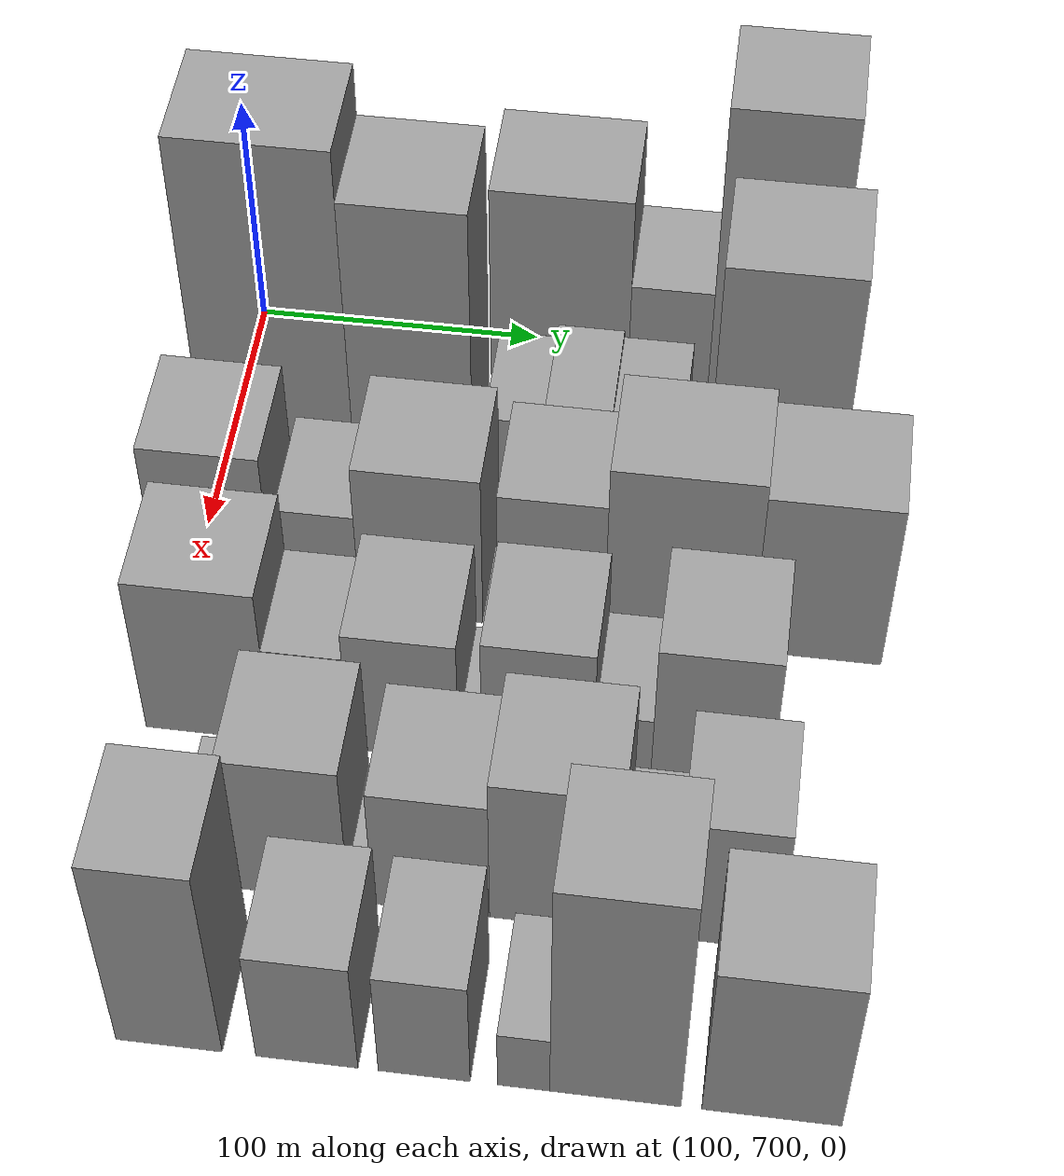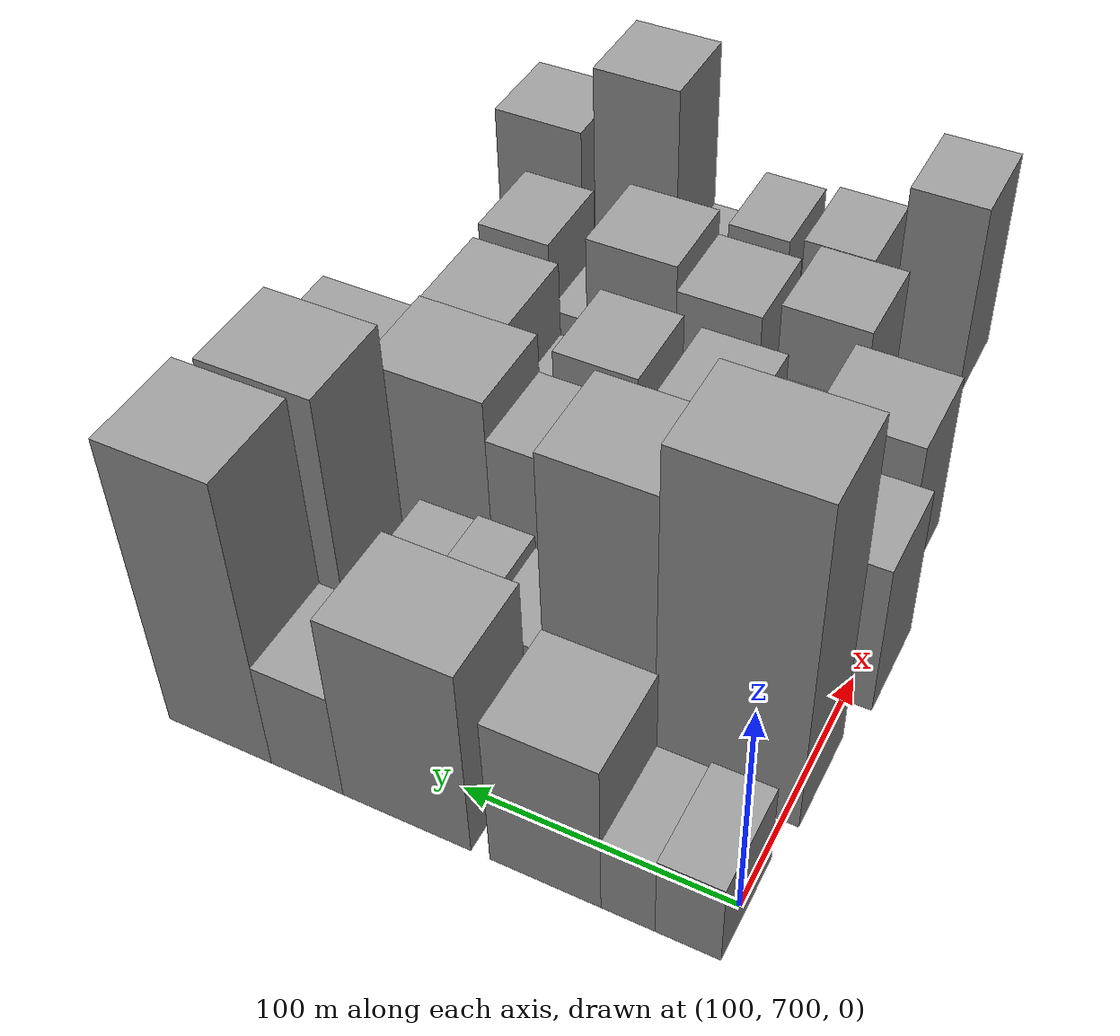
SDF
<sdf version="1.6">
 <world name="default">
  <model name="building_46">
   <static>1</static>
   <pose>100.0000 708.9300 0 0.000000 0.000000 0.000000</pose>
   <link name="link">
    <pose>0 0 19.50 0 0 0</pose>
    <collision name="collision"><geometry><box><size>40.0000 22.5746 39.0000</size></box></geometry></collision>
    <visual name="visual">
     <cast_shadows>0</cast_shadows>
     <geometry><box><size>40.0000 22.5746 39.0000</size></box></geometry>
     <material>
      <script>
       <uri>model://grey_wall/materials/scripts</uri>
       <uri>model://grey_wall/materials/textures</uri>
       <name>vrc/grey_wall</name>
      </script>
     </material>
    </visual>
   </link>
  </model>
  <model name="building_47">
   <static>1</static>
   <pose>100.0000 729.6130 0 0.000000 0.000000 0.000000</pose>
   <link name="link">
    <pose>0 0 18.00 0 0 0</pose>
    <collision name="collision"><geometry><box><size>40.0000 18.7915 36.0000</size></box></geometry></collision>
    <visual name="visual">
     <cast_shadows>0</cast_shadows>
     <geometry><box><size>40.0000 18.7915 36.0000</size></box></geometry>
     <material>
      <script>
       <uri>model://grey_wall/materials/scripts</uri>
       <uri>model://grey_wall/materials/textures</uri>
       <name>vrc/grey_wall</name>
      </script>
     </material>
    </visual>
   </link>
  </model>
  <model name="building_48">
   <static>1</static>
   <pose>100.0000 759.0133 0 0.000000 0.000000 0.000000</pose>
   <link name="link">
    <pose>0 0 36.00 0 0 0</pose>
    <collision name="collision"><geometry><box><size>40.0000 40.0090 72.0000</size></box></geometry></collision>
    <visual name="visual">
     <cast_shadows>0</cast_shadows>
     <geometry><box><size>40.0000 40.0090 72.0000</size></box></geometry>
     <material>
      <script>
       <uri>model://grey_wall/materials/scripts</uri>
       <uri>model://grey_wall/materials/textures</uri>
       <name>vrc/grey_wall</name>
      </script>
     </material>
    </visual>
   </link>
  </model>
  <model name="building_49">
   <static>1</static>
   <pose>100.0000 810.4328 0 0.000000 0.000000 0.000000</pose>
   <link name="link">
    <pose>0 0 45.00 0 0 0</pose>
    <collision name="collision"><geometry><box><size>40.0000 48.8301 90.0000</size></box></geometry></collision>
    <visual name="visual">
     <cast_shadows>0</cast_shadows>
     <geometry><box><size>40.0000 48.8301 90.0000</size></box></geometry>
     <material>
      <script>
       <uri>model://grey_wall/materials/scripts</uri>
       <uri>model://grey_wall/materials/textures</uri>
       <name>vrc/grey_wall</name>
      </script>
     </material>
    </visual>
   </link>
  </model>
  <model name="building_50">
   <static>1</static>
   <pose>100.0000 849.0841 0 0.000000 0.000000 0.000000</pose>
   <link name="link">
    <pose>0 0 25.50 0 0 0</pose>
    <collision name="collision"><geometry><box><size>40.0000 28.4724 51.0000</size></box></geometry></collision>
    <visual name="visual">
     <cast_shadows>0</cast_shadows>
     <geometry><box><size>40.0000 28.4724 51.0000</size></box></geometry>
     <material>
      <script>
       <uri>model://grey_wall/materials/scripts</uri>
       <uri>model://grey_wall/materials/textures</uri>
       <name>vrc/grey_wall</name>
      </script>
     </material>
    </visual>
   </link>
  </model>
  <model name="building_51">
   <static>1</static>
   <pose>100.0000 884.3247 0 0.000000 0.000000 0.000000</pose>
   <link name="link">
    <pose>0 0 67.50 0 0 0</pose>
    <collision name="collision"><geometry><box><size>40.0000 42.0088 135.0000</size></box></geometry></collision>
    <visual name="visual">
     <cast_shadows>0</cast_shadows>
     <geometry><box><size>40.0000 42.0088 135.0000</size></box></geometry>
     <material>
      <script>
       <uri>model://grey_wall/materials/scripts</uri>
       <uri>model://grey_wall/materials/textures</uri>
       <name>vrc/grey_wall</name>
      </script>
     </material>
    </visual>
   </link>
  </model>
  <model name="building_96">
   <static>1</static>
   <pose>155.0000 720.3767 0 0.000000 0.000000 0.000000</pose>
   <link name="link">
    <pose>0 0 76.50 0 0 0</pose>
    <collision name="collision"><geometry><box><size>40.0000 52.4313 153.0000</size></box></geometry></collision>
    <visual name="visual">
     <cast_shadows>0</cast_shadows>
     <geometry><box><size>40.0000 52.4313 153.0000</size></box></geometry>
     <material>
      <script>
       <uri>model://grey_wall/materials/scripts</uri>
       <uri>model://grey_wall/materials/textures</uri>
       <name>vrc/grey_wall</name>
      </script>
     </material>
    </visual>
   </link>
  </model>
  <model name="building_97">
   <static>1</static>
   <pose>155.0000 767.0884 0 0.000000 0.000000 0.000000</pose>
   <link name="link">
    <pose>0 0 66.00 0 0 0</pose>
    <collision name="collision"><geometry><box><size>40.0000 40.9922 132.0000</size></box></geometry></collision>
    <visual name="visual">
     <cast_shadows>0</cast_shadows>
     <geometry><box><size>40.0000 40.9922 132.0000</size></box></geometry>
     <material>
      <script>
       <uri>model://grey_wall/materials/scripts</uri>
       <uri>model://grey_wall/materials/textures</uri>
       <name>vrc/grey_wall</name>
      </script>
     </material>
    </visual>
   </link>
  </model>
  <model name="building_98">
   <static>1</static>
   <pose>155.0000 801.6660 0 0.000000 0.000000 0.000000</pose>
   <link name="link">
    <pose>0 0 19.50 0 0 0</pose>
    <collision name="collision"><geometry><box><size>40.0000 20.1630 39.0000</size></box></geometry></collision>
    <visual name="visual">
     <cast_shadows>0</cast_shadows>
     <geometry><box><size>40.0000 20.1630 39.0000</size></box></geometry>
     <material>
      <script>
       <uri>model://grey_wall/materials/scripts</uri>
       <uri>model://grey_wall/materials/textures</uri>
       <name>vrc/grey_wall</name>
      </script>
     </material>
    </visual>
   </link>
  </model>
  <model name="building_99">
   <static>1</static>
   <pose>155.0000 823.0206 0 0.000000 0.000000 0.000000</pose>
   <link name="link">
    <pose>0 0 22.50 0 0 0</pose>
    <collision name="collision"><geometry><box><size>40.0000 22.5461 45.0000</size></box></geometry></collision>
    <visual name="visual">
     <cast_shadows>0</cast_shadows>
     <geometry><box><size>40.0000 22.5461 45.0000</size></box></geometry>
     <material>
      <script>
       <uri>model://grey_wall/materials/scripts</uri>
       <uri>model://grey_wall/materials/textures</uri>
       <name>vrc/grey_wall</name>
      </script>
     </material>
    </visual>
   </link>
  </model>
  <model name="building_100">
   <static>1</static>
   <pose>155.0000 846.1812 0 0.000000 0.000000 0.000000</pose>
   <link name="link">
    <pose>0 0 21.00 0 0 0</pose>
    <collision name="collision"><geometry><box><size>40.0000 23.7752 42.0000</size></box></geometry></collision>
    <visual name="visual">
     <cast_shadows>0</cast_shadows>
     <geometry><box><size>40.0000 23.7752 42.0000</size></box></geometry>
     <material>
      <script>
       <uri>model://grey_wall/materials/scripts</uri>
       <uri>model://grey_wall/materials/textures</uri>
       <name>vrc/grey_wall</name>
      </script>
     </material>
    </visual>
   </link>
  </model>
  <model name="building_101">
   <static>1</static>
   <pose>155.0000 889.3087 0 0.000000 0.000000 0.000000</pose>
   <link name="link">
    <pose>0 0 60.00 0 0 0</pose>
    <collision name="collision"><geometry><box><size>40.0000 44.4796 120.0000</size></box></geometry></collision>
    <visual name="visual">
     <cast_shadows>0</cast_shadows>
     <geometry><box><size>40.0000 44.4796 120.0000</size></box></geometry>
     <material>
      <script>
       <uri>model://grey_wall/materials/scripts</uri>
       <uri>model://grey_wall/materials/textures</uri>
       <name>vrc/grey_wall</name>
      </script>
     </material>
    </visual>
   </link>
  </model>
  <model name="building_146">
   <static>1</static>
   <pose>210.0000 708.9794 0 0.000000 0.000000 0.000000</pose>
   <link name="link">
    <pose>0 0 36.00 0 0 0</pose>
    <collision name="collision"><geometry><box><size>40.0000 39.3848 72.0000</size></box></geometry></collision>
    <visual name="visual">
     <cast_shadows>0</cast_shadows>
     <geometry><box><size>40.0000 39.3848 72.0000</size></box></geometry>
     <material>
      <script>
       <uri>model://grey_wall/materials/scripts</uri>
       <uri>model://grey_wall/materials/textures</uri>
       <name>vrc/grey_wall</name>
      </script>
     </material>
    </visual>
   </link>
  </model>
  <model name="building_147">
   <static>1</static>
   <pose>210.0000 744.5570 0 0.000000 0.000000 0.000000</pose>
   <link name="link">
    <pose>0 0 24.00 0 0 0</pose>
    <collision name="collision"><geometry><box><size>40.0000 25.7705 48.0000</size></box></geometry></collision>
    <visual name="visual">
     <cast_shadows>0</cast_shadows>
     <geometry><box><size>40.0000 25.7705 48.0000</size></box></geometry>
     <material>
      <script>
       <uri>model://grey_wall/materials/scripts</uri>
       <uri>model://grey_wall/materials/textures</uri>
       <name>vrc/grey_wall</name>
      </script>
     </material>
    </visual>
   </link>
  </model>
  <model name="building_148">
   <static>1</static>
   <pose>210.0000 777.9944 0 0.000000 0.000000 0.000000</pose>
   <link name="link">
    <pose>0 0 36.00 0 0 0</pose>
    <collision name="collision"><geometry><box><size>40.0000 41.1043 72.0000</size></box></geometry></collision>
    <visual name="visual">
     <cast_shadows>0</cast_shadows>
     <geometry><box><size>40.0000 41.1043 72.0000</size></box></geometry>
     <material>
      <script>
       <uri>model://grey_wall/materials/scripts</uri>
       <uri>model://grey_wall/materials/textures</uri>
       <name>vrc/grey_wall</name>
      </script>
     </material>
    </visual>
   </link>
  </model>
  <model name="building_149">
   <static>1</static>
   <pose>210.0000 821.1472 0 0.000000 0.000000 0.000000</pose>
   <link name="link">
    <pose>0 0 33.00 0 0 0</pose>
    <collision name="collision"><geometry><box><size>40.0000 35.2014 66.0000</size></box></geometry></collision>
    <visual name="visual">
     <cast_shadows>0</cast_shadows>
     <geometry><box><size>40.0000 35.2014 66.0000</size></box></geometry>
     <material>
      <script>
       <uri>model://grey_wall/materials/scripts</uri>
       <uri>model://grey_wall/materials/textures</uri>
       <name>vrc/grey_wall</name>
      </script>
     </material>
    </visual>
   </link>
  </model>
  <model name="building_150">
   <static>1</static>
   <pose>210.0000 863.0113 0 0.000000 0.000000 0.000000</pose>
   <link name="link">
    <pose>0 0 42.00 0 0 0</pose>
    <collision name="collision"><geometry><box><size>40.0000 48.5268 84.0000</size></box></geometry></collision>
    <visual name="visual">
     <cast_shadows>0</cast_shadows>
     <geometry><box><size>40.0000 48.5268 84.0000</size></box></geometry>
     <material>
      <script>
       <uri>model://grey_wall/materials/scripts</uri>
       <uri>model://grey_wall/materials/textures</uri>
       <name>vrc/grey_wall</name>
      </script>
     </material>
    </visual>
   </link>
  </model>
  <model name="building_151">
   <static>1</static>
   <pose>210.0000 908.4599 0 0.000000 0.000000 0.000000</pose>
   <link name="link">
    <pose>0 0 39.00 0 0 0</pose>
    <collision name="collision"><geometry><box><size>40.0000 42.3704 78.0000</size></box></geometry></collision>
    <visual name="visual">
     <cast_shadows>0</cast_shadows>
     <geometry><box><size>40.0000 42.3704 78.0000</size></box></geometry>
     <material>
      <script>
       <uri>model://grey_wall/materials/scripts</uri>
       <uri>model://grey_wall/materials/textures</uri>
       <name>vrc/grey_wall</name>
      </script>
     </material>
    </visual>
   </link>
  </model>
  <model name="building_195">
   <static>1</static>
   <pose>265.0000 717.8238 0 0.000000 0.000000 0.000000</pose>
   <link name="link">
    <pose>0 0 37.50 0 0 0</pose>
    <collision name="collision"><geometry><box><size>40.0000 40.7514 75.0000</size></box></geometry></collision>
    <visual name="visual">
     <cast_shadows>0</cast_shadows>
     <geometry><box><size>40.0000 40.7514 75.0000</size></box></geometry>
     <material>
      <script>
       <uri>model://grey_wall/materials/scripts</uri>
       <uri>model://grey_wall/materials/textures</uri>
       <name>vrc/grey_wall</name>
      </script>
     </material>
    </visual>
   </link>
  </model>
  <model name="building_196">
   <static>1</static>
   <pose>265.0000 750.7844 0 0.000000 0.000000 0.000000</pose>
   <link name="link">
    <pose>0 0 24.00 0 0 0</pose>
    <collision name="collision"><geometry><box><size>40.0000 25.1699 48.0000</size></box></geometry></collision>
    <visual name="visual">
     <cast_shadows>0</cast_shadows>
     <geometry><box><size>40.0000 25.1699 48.0000</size></box></geometry>
     <material>
      <script>
       <uri>model://grey_wall/materials/scripts</uri>
       <uri>model://grey_wall/materials/textures</uri>
       <name>vrc/grey_wall</name>
      </script>
     </material>
    </visual>
   </link>
  </model>
  <model name="building_197">
   <static>1</static>
   <pose>265.0000 781.0442 0 0.000000 0.000000 0.000000</pose>
   <link name="link">
    <pose>0 0 30.00 0 0 0</pose>
    <collision name="collision"><geometry><box><size>40.0000 35.3497 60.0000</size></box></geometry></collision>
    <visual name="visual">
     <cast_shadows>0</cast_shadows>
     <geometry><box><size>40.0000 35.3497 60.0000</size></box></geometry>
     <material>
      <script>
       <uri>model://grey_wall/materials/scripts</uri>
       <uri>model://grey_wall/materials/textures</uri>
       <name>vrc/grey_wall</name>
      </script>
     </material>
    </visual>
   </link>
  </model>
  <model name="building_198">
   <static>1</static>
   <pose>265.0000 802.3979 0 0.000000 0.000000 0.000000</pose>
   <link name="link">
    <pose>0 0 9.00 0 0 0</pose>
    <collision name="collision"><geometry><box><size>40.0000 7.3576 18.0000</size></box></geometry></collision>
    <visual name="visual">
     <cast_shadows>0</cast_shadows>
     <geometry><box><size>40.0000 7.3576 18.0000</size></box></geometry>
     <material>
      <script>
       <uri>model://grey_wall/materials/scripts</uri>
       <uri>model://grey_wall/materials/textures</uri>
       <name>vrc/grey_wall</name>
      </script>
     </material>
    </visual>
   </link>
  </model>
  <model name="building_199">
   <static>1</static>
   <pose>265.0000 823.7435 0 0.000000 0.000000 0.000000</pose>
   <link name="link">
    <pose>0 0 31.50 0 0 0</pose>
    <collision name="collision"><geometry><box><size>40.0000 35.3336 63.0000</size></box></geometry></collision>
    <visual name="visual">
     <cast_shadows>0</cast_shadows>
     <geometry><box><size>40.0000 35.3336 63.0000</size></box></geometry>
     <material>
      <script>
       <uri>model://grey_wall/materials/scripts</uri>
       <uri>model://grey_wall/materials/textures</uri>
       <name>vrc/grey_wall</name>
      </script>
     </material>
    </visual>
   </link>
  </model>
  <model name="building_200">
   <static>1</static>
   <pose>265.0000 850.4867 0 0.000000 0.000000 0.000000</pose>
   <link name="link">
    <pose>0 0 16.50 0 0 0</pose>
    <collision name="collision"><geometry><box><size>40.0000 18.1528 33.0000</size></box></geometry></collision>
    <visual name="visual">
     <cast_shadows>0</cast_shadows>
     <geometry><box><size>40.0000 18.1528 33.0000</size></box></geometry>
     <material>
      <script>
       <uri>model://grey_wall/materials/scripts</uri>
       <uri>model://grey_wall/materials/textures</uri>
       <name>vrc/grey_wall</name>
      </script>
     </material>
    </visual>
   </link>
  </model>
  <model name="building_201">
   <static>1</static>
   <pose>265.0000 878.3511 0 0.000000 0.000000 0.000000</pose>
   <link name="link">
    <pose>0 0 34.50 0 0 0</pose>
    <collision name="collision"><geometry><box><size>40.0000 37.5761 69.0000</size></box></geometry></collision>
    <visual name="visual">
     <cast_shadows>0</cast_shadows>
     <geometry><box><size>40.0000 37.5761 69.0000</size></box></geometry>
     <material>
      <script>
       <uri>model://grey_wall/materials/scripts</uri>
       <uri>model://grey_wall/materials/textures</uri>
       <name>vrc/grey_wall</name>
      </script>
     </material>
    </visual>
   </link>
  </model>
  <model name="building_242">
   <static>1</static>
   <pose>320.0000 725.1284 0 0.000000 0.000000 0.000000</pose>
   <link name="link">
    <pose>0 0 10.50 0 0 0</pose>
    <collision name="collision"><geometry><box><size>40.0000 8.6253 21.0000</size></box></geometry></collision>
    <visual name="visual">
     <cast_shadows>0</cast_shadows>
     <geometry><box><size>40.0000 8.6253 21.0000</size></box></geometry>
     <material>
      <script>
       <uri>model://grey_wall/materials/scripts</uri>
       <uri>model://grey_wall/materials/textures</uri>
       <name>vrc/grey_wall</name>
      </script>
     </material>
    </visual>
   </link>
  </model>
  <model name="building_243">
   <static>1</static>
   <pose>320.0000 754.6647 0 0.000000 0.000000 0.000000</pose>
   <link name="link">
    <pose>0 0 34.50 0 0 0</pose>
    <collision name="collision"><geometry><box><size>40.0000 36.4472 69.0000</size></box></geometry></collision>
    <visual name="visual">
     <cast_shadows>0</cast_shadows>
     <geometry><box><size>40.0000 36.4472 69.0000</size></box></geometry>
     <material>
      <script>
       <uri>model://grey_wall/materials/scripts</uri>
       <uri>model://grey_wall/materials/textures</uri>
       <name>vrc/grey_wall</name>
      </script>
     </material>
    </visual>
   </link>
  </model>
  <model name="building_244">
   <static>1</static>
   <pose>320.0000 776.5592 0 0.000000 0.000000 0.000000</pose>
   <link name="link">
    <pose>0 0 7.50 0 0 0</pose>
    <collision name="collision"><geometry><box><size>40.0000 7.3420 15.0000</size></box></geometry></collision>
    <visual name="visual">
     <cast_shadows>0</cast_shadows>
     <geometry><box><size>40.0000 7.3420 15.0000</size></box></geometry>
     <material>
      <script>
       <uri>model://grey_wall/materials/scripts</uri>
       <uri>model://grey_wall/materials/textures</uri>
       <name>vrc/grey_wall</name>
      </script>
     </material>
    </visual>
   </link>
  </model>
  <model name="building_245">
   <static>1</static>
   <pose>320.0000 798.1583 0 0.000000 0.000000 0.000000</pose>
   <link name="link">
    <pose>0 0 30.00 0 0 0</pose>
    <collision name="collision"><geometry><box><size>40.0000 35.8561 60.0000</size></box></geometry></collision>
    <visual name="visual">
     <cast_shadows>0</cast_shadows>
     <geometry><box><size>40.0000 35.8561 60.0000</size></box></geometry>
     <material>
      <script>
       <uri>model://grey_wall/materials/scripts</uri>
       <uri>model://grey_wall/materials/textures</uri>
       <name>vrc/grey_wall</name>
      </script>
     </material>
    </visual>
   </link>
  </model>
  <model name="building_246">
   <static>1</static>
   <pose>320.0000 835.7679 0 0.000000 0.000000 0.000000</pose>
   <link name="link">
    <pose>0 0 36.00 0 0 0</pose>
    <collision name="collision"><geometry><box><size>40.0000 39.3630 72.0000</size></box></geometry></collision>
    <visual name="visual">
     <cast_shadows>0</cast_shadows>
     <geometry><box><size>40.0000 39.3630 72.0000</size></box></geometry>
     <material>
      <script>
       <uri>model://grey_wall/materials/scripts</uri>
       <uri>model://grey_wall/materials/textures</uri>
       <name>vrc/grey_wall</name>
      </script>
     </material>
    </visual>
   </link>
  </model>
  <model name="building_247">
   <static>1</static>
   <pose>320.0000 863.8326 0 0.000000 0.000000 0.000000</pose>
   <link name="link">
    <pose>0 0 15.00 0 0 0</pose>
    <collision name="collision"><geometry><box><size>40.0000 16.7663 30.0000</size></box></geometry></collision>
    <visual name="visual">
     <cast_shadows>0</cast_shadows>
     <geometry><box><size>40.0000 16.7663 30.0000</size></box></geometry>
     <material>
      <script>
       <uri>model://grey_wall/materials/scripts</uri>
       <uri>model://grey_wall/materials/textures</uri>
       <name>vrc/grey_wall</name>
      </script>
     </material>
    </visual>
   </link>
  </model>
  <model name="building_248">
   <static>1</static>
   <pose>320.0000 888.0062 0 0.000000 0.000000 0.000000</pose>
   <link name="link">
    <pose>0 0 31.50 0 0 0</pose>
    <collision name="collision"><geometry><box><size>40.0000 31.5809 63.0000</size></box></geometry></collision>
    <visual name="visual">
     <cast_shadows>0</cast_shadows>
     <geometry><box><size>40.0000 31.5809 63.0000</size></box></geometry>
     <material>
      <script>
       <uri>model://grey_wall/materials/scripts</uri>
       <uri>model://grey_wall/materials/textures</uri>
       <name>vrc/grey_wall</name>
      </script>
     </material>
    </visual>
   </link>
  </model>
  <model name="building_297">
   <static>1</static>
   <pose>375.0000 728.8652 0 0.000000 0.000000 0.000000</pose>
   <link name="link">
    <pose>0 0 48.00 0 0 0</pose>
    <collision name="collision"><geometry><box><size>40.0000 31.7635 96.0000</size></box></geometry></collision>
    <visual name="visual">
     <cast_shadows>0</cast_shadows>
     <geometry><box><size>40.0000 31.7635 96.0000</size></box></geometry>
     <material>
      <script>
       <uri>model://grey_wall/materials/scripts</uri>
       <uri>model://grey_wall/materials/textures</uri>
       <name>vrc/grey_wall</name>
      </script>
     </material>
    </visual>
   </link>
  </model>
  <model name="building_298">
   <static>1</static>
   <pose>375.0000 769.8769 0 0.000000 0.000000 0.000000</pose>
   <link name="link">
    <pose>0 0 28.50 0 0 0</pose>
    <collision name="collision"><geometry><box><size>40.0000 30.2599 57.0000</size></box></geometry></collision>
    <visual name="visual">
     <cast_shadows>0</cast_shadows>
     <geometry><box><size>40.0000 30.2599 57.0000</size></box></geometry>
     <material>
      <script>
       <uri>model://grey_wall/materials/scripts</uri>
       <uri>model://grey_wall/materials/textures</uri>
       <name>vrc/grey_wall</name>
      </script>
     </material>
    </visual>
   </link>
  </model>
  <model name="building_299">
   <static>1</static>
   <pose>375.0000 804.5219 0 0.000000 0.000000 0.000000</pose>
   <link name="link">
    <pose>0 0 27.00 0 0 0</pose>
    <collision name="collision"><geometry><box><size>40.0000 27.0302 54.0000</size></box></geometry></collision>
    <visual name="visual">
     <cast_shadows>0</cast_shadows>
     <geometry><box><size>40.0000 27.0302 54.0000</size></box></geometry>
     <material>
      <script>
       <uri>model://grey_wall/materials/scripts</uri>
       <uri>model://grey_wall/materials/textures</uri>
       <name>vrc/grey_wall</name>
      </script>
     </material>
    </visual>
   </link>
  </model>
  <model name="building_300">
   <static>1</static>
   <pose>375.0000 833.6505 0 0.000000 0.000000 0.000000</pose>
   <link name="link">
    <pose>0 0 15.00 0 0 0</pose>
    <collision name="collision"><geometry><box><size>40.0000 15.2270 30.0000</size></box></geometry></collision>
    <visual name="visual">
     <cast_shadows>0</cast_shadows>
     <geometry><box><size>40.0000 15.2270 30.0000</size></box></geometry>
     <material>
      <script>
       <uri>model://grey_wall/materials/scripts</uri>
       <uri>model://grey_wall/materials/textures</uri>
       <name>vrc/grey_wall</name>
      </script>
     </material>
    </visual>
   </link>
  </model>
  <model name="building_301">
   <static>1</static>
   <pose>375.0000 860.3727 0 0.000000 0.000000 0.000000</pose>
   <link name="link">
    <pose>0 0 55.50 0 0 0</pose>
    <collision name="collision"><geometry><box><size>40.0000 38.2173 111.0000</size></box></geometry></collision>
    <visual name="visual">
     <cast_shadows>0</cast_shadows>
     <geometry><box><size>40.0000 38.2173 111.0000</size></box></geometry>
     <material>
      <script>
       <uri>model://grey_wall/materials/scripts</uri>
       <uri>model://grey_wall/materials/textures</uri>
       <name>vrc/grey_wall</name>
      </script>
     </material>
    </visual>
   </link>
  </model>
  <model name="building_302">
   <static>1</static>
   <pose>375.0000 905.6826 0 0.000000 0.000000 0.000000</pose>
   <link name="link">
    <pose>0 0 39.00 0 0 0</pose>
    <collision name="collision"><geometry><box><size>40.0000 40.4025 78.0000</size></box></geometry></collision>
    <visual name="visual">
     <cast_shadows>0</cast_shadows>
     <geometry><box><size>40.0000 40.4025 78.0000</size></box></geometry>
     <material>
      <script>
       <uri>model://grey_wall/materials/scripts</uri>
       <uri>model://grey_wall/materials/textures</uri>
       <name>vrc/grey_wall</name>
      </script>
     </material>
    </visual>
   </link>
  </model>
 </world>
</sdf>
